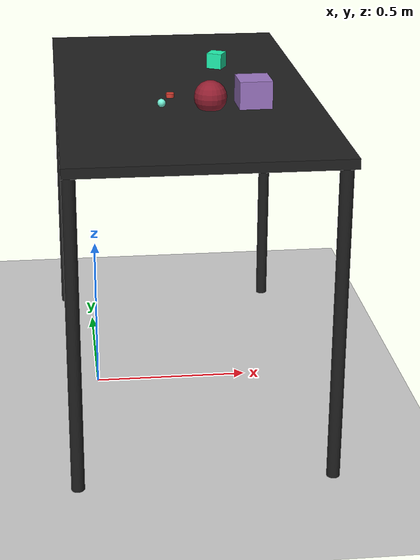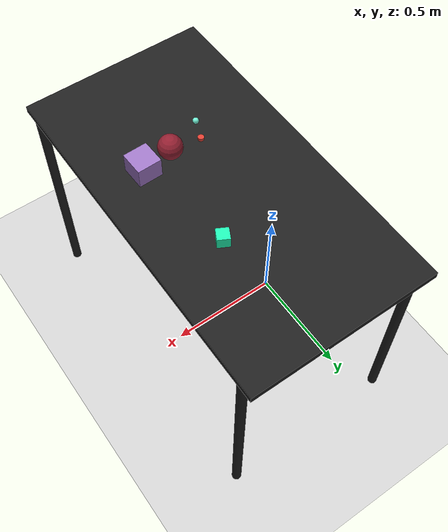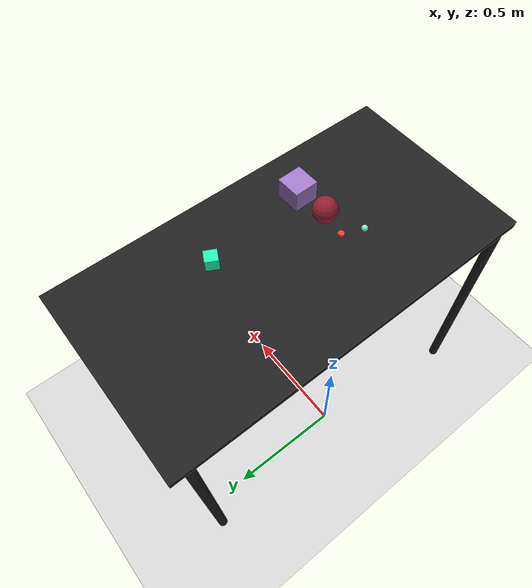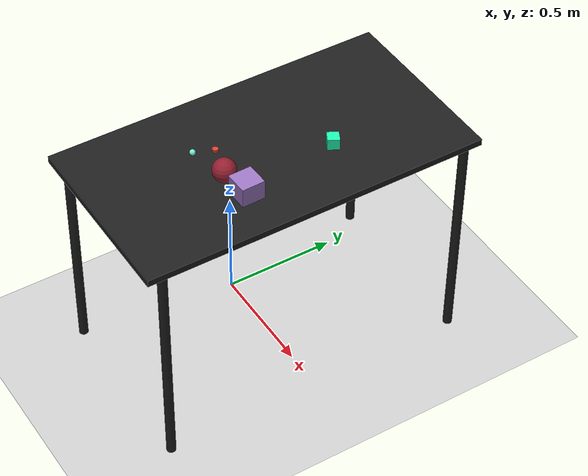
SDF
<?xml version="1.0" ?>
<sdf version="1.6">
  <world name="arm_world">
    <plugin filename="gz-sim-physics-system" name="gz::sim::systems::Physics">
      <engine>
        <filename>libgz-physics-bullet-featherstone-plugin.so</filename>
      </engine>
    </plugin>
    <plugin filename="gz-sim-user-commands-system" name="gz::sim::systems::UserCommands"/>
    <plugin filename="gz-sim-scene-broadcaster-system" name="gz::sim::systems::SceneBroadcaster"/>
    <plugin filename="gz-sim-sensors-system" name="gz::sim::systems::Sensors">
      <render_engine>ogre2</render_engine>
    </plugin>
    <gravity>0.0 0.0 -9.8</gravity>
    <scene>
      <shadows>false</shadows>
    </scene>
    <gui>
      <camera name="user_camera">
        <pose>0.75 -0.75 1.4 0 0.29 2.21</pose>
      </camera>
    </gui>
    <include>
      <uri>https://fuel.gazebosim.org/1.0/OpenRobotics/models/Sun</uri>
    </include>
    <model name="table">
      <static>true</static>
      <include>
        <uri>model://table</uri>
      </include>
      <pose>0.29 0 0 0 0 1.5708</pose>
    </model>
    <model name="ground_plane">
      <static>true</static>
      <link name="link">
        <collision name="collision">
          <geometry>
            <plane>
              <normal>0 0 1</normal>
            </plane>
          </geometry>
          <surface>
            <friction>
              <ode>
                <mu>1.0</mu>
                <mu2>1.0</mu2>
              </ode>
            </friction>
          </surface>
        </collision>
        <visual name="visual">
          <geometry>
            <plane>
              <normal>0 0 1</normal>
              <size>100 100</size>
            </plane>
          </geometry>
          <material>
            <ambient>0.8 0.8 0.8 1</ambient>
            <diffuse>0.8 0.8 0.8 1</diffuse>
            <specular>0.8 0.8 0.8 1</specular>
          </material>
        </visual>
      </link>
    </model>
    <model name="sphere_l_0">
      <pose>0.35 -0.224 1.05 0 0 2.5</pose>
      <link name="sphere_l_0_link">
        <collision name="sphere_l_0_collision">
          <geometry>
            <sphere>
              <radius>0.05</radius>
            </sphere>
          </geometry>
        </collision>
        <visual name="sphere_l_0_visual">
          <geometry>
            <sphere>
              <radius>0.05</radius>
            </sphere>
          </geometry>
          <material>
            <ambient>0.57 0.12 0.19 1</ambient>
            <diffuse>0.57 0.12 0.19 1</diffuse>
          </material>
        </visual>
        <velocity_decay>
          <linear>1</linear>
          <angular>1</angular>
        </velocity_decay>
      </link>
    </model>
    <model name="cube_m_1">
      <pose>0.425 0.224 1.05 0 0 5.8</pose>
      <link name="cube_m_1_link">
        <collision name="cube_m_1_collision">
          <geometry>
            <box>
              <size>0.05 0.05 0.05</size>
            </box>
          </geometry>
        </collision>
        <visual name="cube_m_1_visual">
          <geometry>
            <box>
              <size>0.05 0.05 0.05</size>
            </box>
          </geometry>
          <material>
            <ambient>0.12 0.96 0.69 1</ambient>
            <diffuse>0.12 0.96 0.69 1</diffuse>
          </material>
        </visual>
        <velocity_decay>
          <linear>1</linear>
          <angular>1</angular>
        </velocity_decay>
      </link>
    </model>
    <model name="sphere_s_2">
      <pose>0.198 -0.277 1.05 0 0 2.04</pose>
      <link name="sphere_s_2_link">
        <collision name="sphere_s_2_collision">
          <geometry>
            <sphere>
              <radius>0.0125</radius>
            </sphere>
          </geometry>
        </collision>
        <visual name="sphere_s_2_visual">
          <geometry>
            <sphere>
              <radius>0.0125</radius>
            </sphere>
          </geometry>
          <material>
            <ambient>0.45 0.95 0.84 1</ambient>
            <diffuse>0.45 0.95 0.84 1</diffuse>
          </material>
        </visual>
        <velocity_decay>
          <linear>1</linear>
          <angular>1</angular>
        </velocity_decay>
      </link>
    </model>
    <model name="cylinder_s_3">
      <pose>0.231 -0.194 1.05 0 0 3.6</pose>
      <link name="cylinder_s_3_link">
        <collision name="cylinder_s_3_collision">
          <geometry>
            <cylinder>
              <radius>0.0125</radius>
              <length>0.0125</length>
            </cylinder>
          </geometry>
        </collision>
        <visual name="cylinder_s_3_visual">
          <geometry>
            <cylinder>
              <radius>0.0125</radius>
              <length>0.0125</length>
            </cylinder>
          </geometry>
          <material>
            <ambient>0.86 0.24 0.19 1</ambient>
            <diffuse>0.86 0.24 0.19 1</diffuse>
          </material>
        </visual>
        <velocity_decay>
          <linear>1</linear>
          <angular>1</angular>
        </velocity_decay>
      </link>
    </model>
    <model name="cube_l_4">
      <pose>0.483 -0.204 1.05 0 0 4.74</pose>
      <link name="cube_l_4_link">
        <collision name="cube_l_4_collision">
          <geometry>
            <box>
              <size>0.1 0.1 0.1</size>
            </box>
          </geometry>
        </collision>
        <visual name="cube_l_4_visual">
          <geometry>
            <box>
              <size>0.1 0.1 0.1</size>
            </box>
          </geometry>
          <material>
            <ambient>0.61 0.46 0.76 1</ambient>
            <diffuse>0.61 0.46 0.76 1</diffuse>
          </material>
        </visual>
        <velocity_decay>
          <linear>1</linear>
          <angular>1</angular>
        </velocity_decay>
      </link>
    </model>
  </world>
</sdf>

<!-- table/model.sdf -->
<sdf version="1.5">
  <model name="table">
    <static>true</static>
    <link name="link">
      <collision name="surface">
        <pose>0 0 1.0 0 0 0</pose>
        <geometry>
          <box>
            <size>1.5 0.8 0.03</size>
          </box>
        </geometry>
        <surface>
          <friction>
            <ode>
              <mu>0.6</mu>
              <mu2>0.6</mu2>
            </ode>
          </friction>
        </surface>
      </collision>
      <visual name="surface">
        <pose>0 0 1.0 0 0 0</pose>
        <geometry>
          <box>
            <size>1.5 0.8 0.03</size>
          </box>
        </geometry>
        <material>
          <script>
            <uri>file://media/materials/scripts/gazebo.material</uri>
            <name>Gazebo/Black</name>
          </script>
        </material>
      </visual>
      <collision name="front_left_leg">
        <pose>0.68 0.38 0.5 0 0 0</pose>
        <geometry>
          <cylinder>
            <radius>0.02</radius>
            <length>1.0</length>
          </cylinder>
        </geometry>
      </collision>
      <visual name="front_left_leg">
        <pose>0.68 0.38 0.5 0 0 0</pose>
        <geometry>
          <cylinder>
            <radius>0.02</radius>
            <length>1.0</length>
          </cylinder>
        </geometry>
        <material>
          <script>
            <uri>file://media/materials/scripts/gazebo.material</uri>
            <name>Gazebo/Black</name>
          </script>
        </material>
      </visual>
      <collision name="front_right_leg">
        <pose>0.68 -0.38 0.5 0 0 0</pose>
        <geometry>
          <cylinder>
            <radius>0.02</radius>
            <length>1.0</length>
          </cylinder>
        </geometry>
      </collision>
      <visual name="front_right_leg">
        <pose>0.68 -0.38 0.5 0 0 0</pose>
        <geometry>
          <cylinder>
            <radius>0.02</radius>
            <length>1.0</length>
          </cylinder>
        </geometry>
        <material>
          <script>
            <uri>file://media/materials/scripts/gazebo.material</uri>
            <name>Gazebo/Black</name>
          </script>
        </material>
      </visual>
      <collision name="back_right_leg">
        <pose>-0.68 -0.38 0.5 0 0 0</pose>
        <geometry>
          <cylinder>
            <radius>0.02</radius>
            <length>1.0</length>
          </cylinder>
        </geometry>
      </collision>
      <visual name="back_right_leg">
        <pose>-0.68 -0.38 0.5 0 0 0</pose>
        <geometry>
          <cylinder>
            <radius>0.02</radius>
            <length>1.0</length>
          </cylinder>
        </geometry>
        <material>
          <script>
            <uri>file://media/materials/scripts/gazebo.material</uri>
            <name>Gazebo/Black</name>
          </script>
        </material>
      </visual>
      <collision name="back_left_leg">
        <pose>-0.68 0.38 0.5 0 0 0</pose>
        <geometry>
          <cylinder>
            <radius>0.02</radius>
            <length>1.0</length>
          </cylinder>
        </geometry>
      </collision>
      <visual name="back_left_leg">
        <pose>-0.68 0.38 0.5 0 0 0</pose>
        <geometry>
          <cylinder>
            <radius>0.02</radius>
            <length>1.0</length>
          </cylinder>
        </geometry>
        <material>
          <script>
            <uri>file://media/materials/scripts/gazebo.material</uri>
            <name>Gazebo/Black</name>
          </script>
        </material>
      </visual>
    </link>
  </model>
</sdf>
